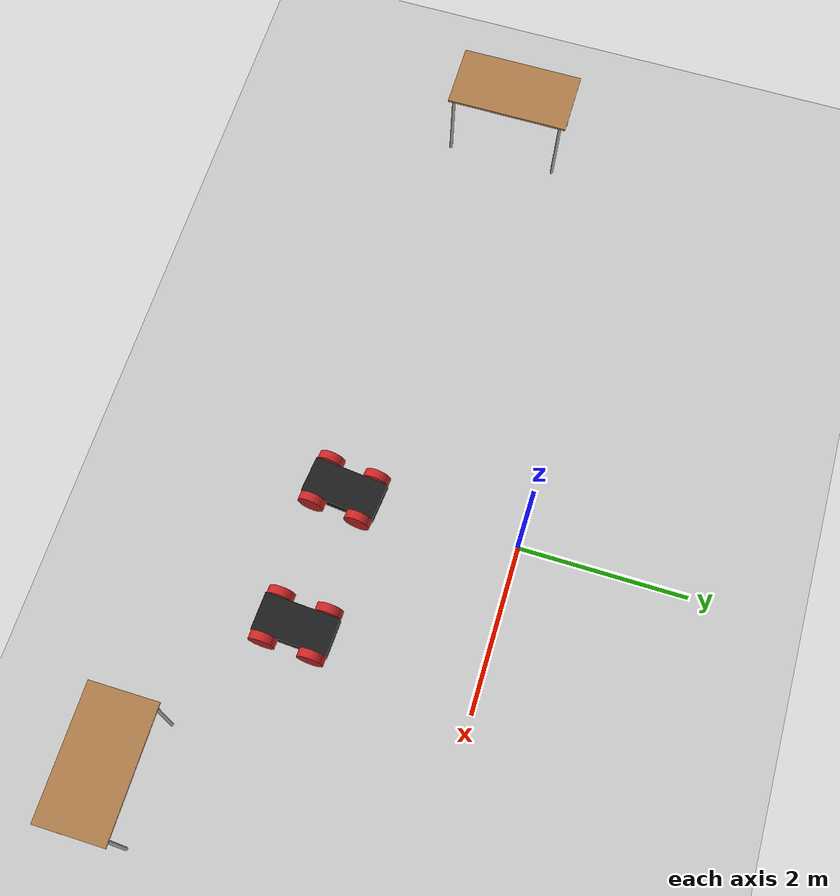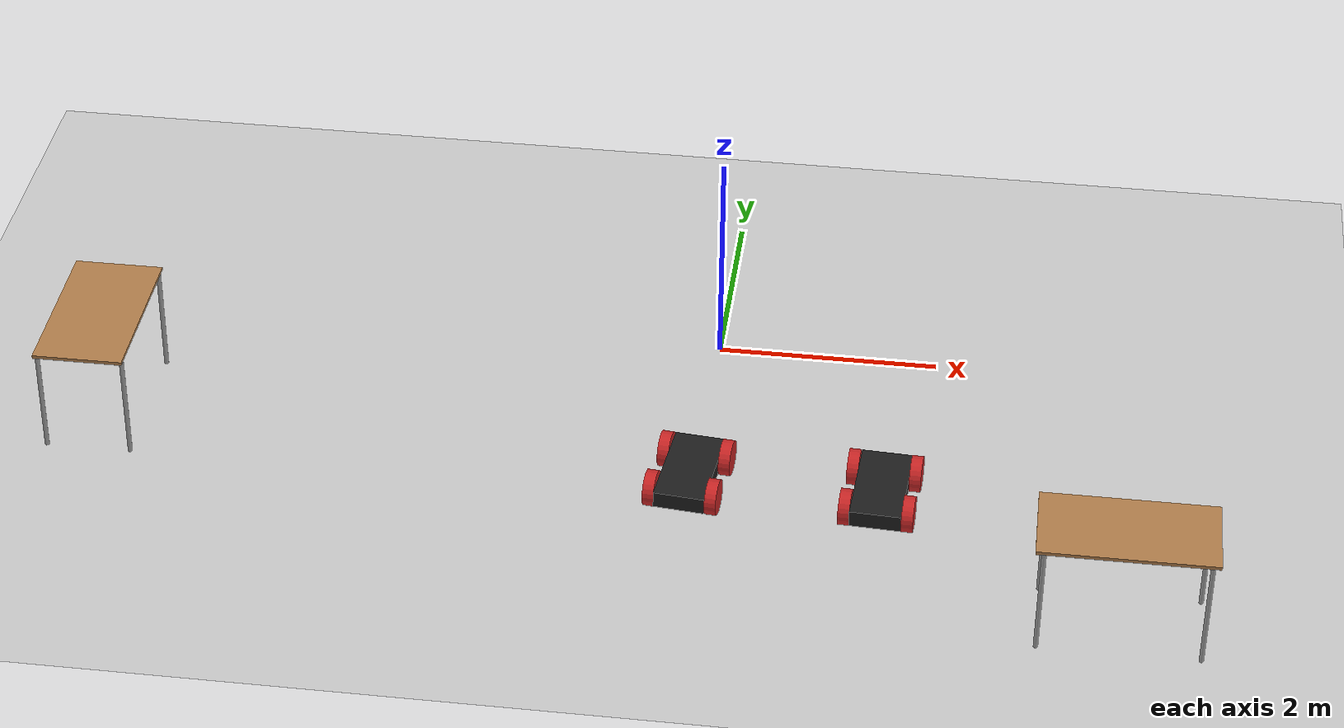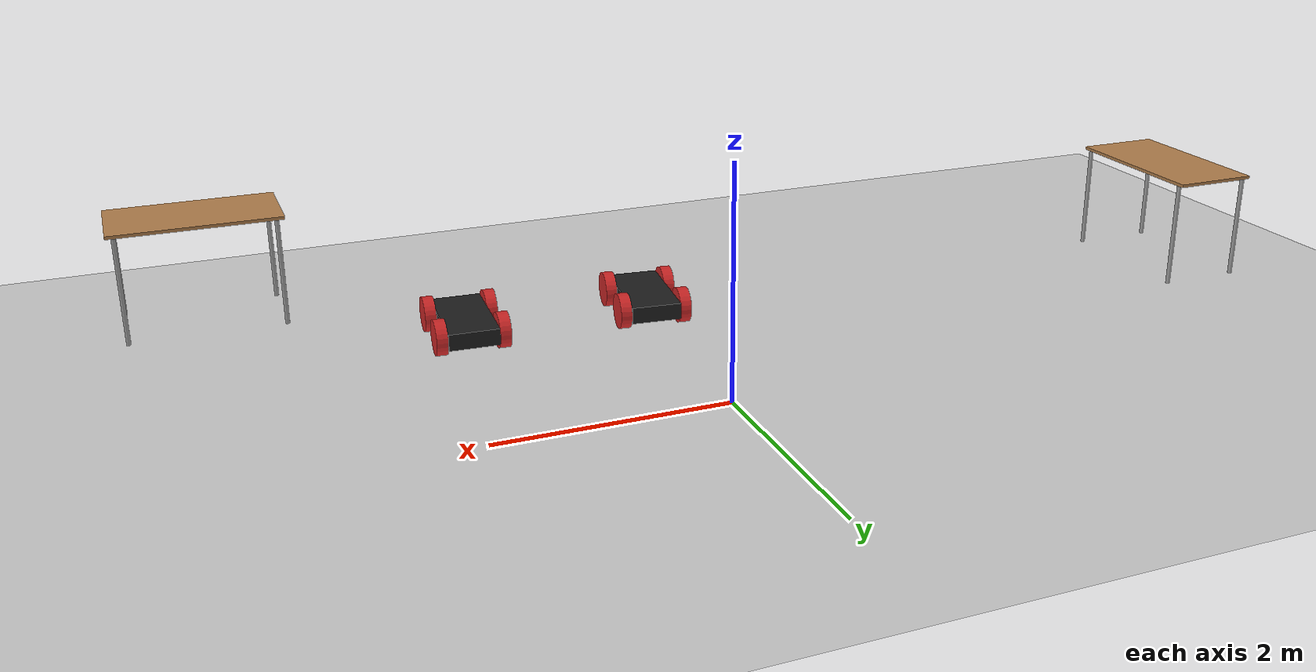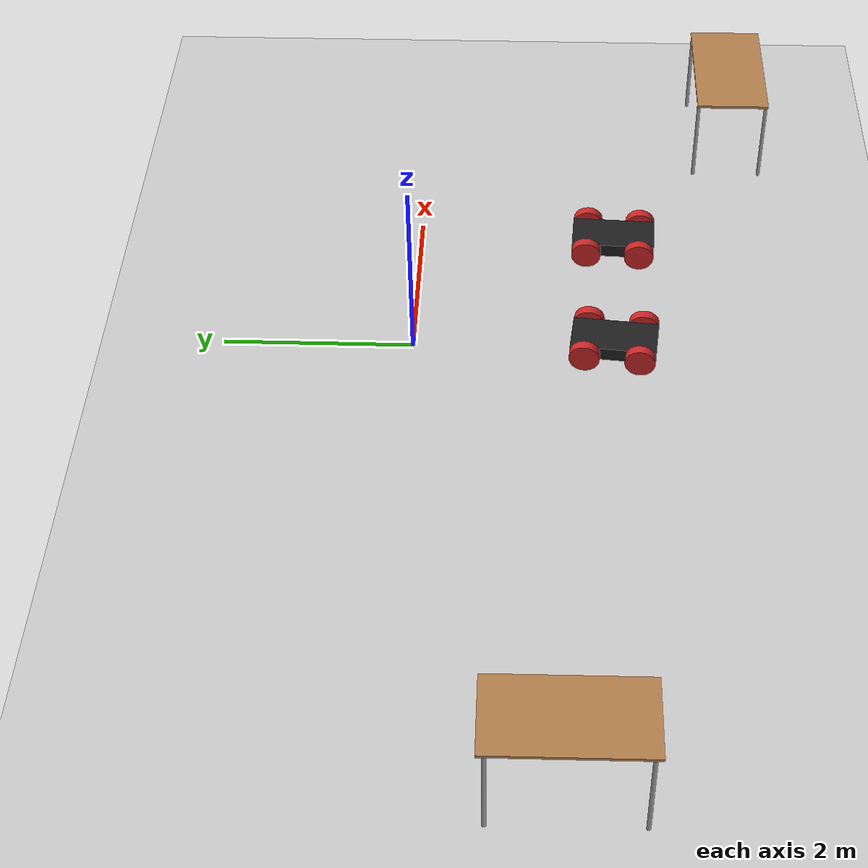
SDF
<sdf version="1.6">
 <world name="default">
  <model name="ground_plane">
   <static>1</static>
   <link name="link">
    <collision name="collision">
     <geometry><plane><normal>0 0 1</normal><size>100 100</size></plane></geometry>
     <surface>
      <contact><collide_bitmask>65535</collide_bitmask></contact>
      <friction><ode><mu>100</mu><mu2>50</mu2></ode></friction>
     </surface>
    </collision>
    <visual name="visual">
     <cast_shadows>0</cast_shadows>
     <geometry><plane><normal>0 0 1</normal><size>100 100</size></plane></geometry>
     <material>
      <script><uri>file://media/materials/scripts/gazebo.material</uri><name>Gazebo/Grey</name></script>
     </material>
    </visual>
   </link>
  </model>
  <model name="table">
   <static>1</static>
   <link name="link">
    <collision name="surface">
     <pose>0 0 1 0 -0 0</pose>
     <geometry><box><size>1.5 0.8 0.03</size></box></geometry>
     <surface><friction><ode><mu>0.6</mu><mu2>0.6</mu2></ode></friction></surface>
    </collision>
    <visual name="visual1">
     <pose>0 0 1 0 -0 0</pose>
     <geometry><box><size>1.5 0.8 0.03</size></box></geometry>
     <material>
      <script><uri>file://media/materials/scripts/gazebo.material</uri><name>Gazebo/Wood</name></script>
     </material>
    </visual>
    <collision name="front_left_leg">
     <pose>0.68 0.38 0.5 0 -0 0</pose>
     <geometry><cylinder><radius>0.02</radius><length>1</length></cylinder></geometry>
    </collision>
    <visual name="front_left_leg">
     <pose>0.68 0.38 0.5 0 -0 0</pose>
     <geometry><cylinder><radius>0.02</radius><length>1</length></cylinder></geometry>
     <material>
      <script><uri>file://media/materials/scripts/gazebo.material</uri><name>Gazebo/Grey</name></script>
     </material>
    </visual>
    <collision name="front_right_leg">
     <pose>0.68 -0.38 0.5 0 -0 0</pose>
     <geometry><cylinder><radius>0.02</radius><length>1</length></cylinder></geometry>
    </collision>
    <visual name="front_right_leg">
     <pose>0.68 -0.38 0.5 0 -0 0</pose>
     <geometry><cylinder><radius>0.02</radius><length>1</length></cylinder></geometry>
     <material>
      <script><uri>file://media/materials/scripts/gazebo.material</uri><name>Gazebo/Grey</name></script>
     </material>
    </visual>
    <collision name="back_right_leg">
     <pose>-0.68 -0.38 0.5 0 -0 0</pose>
     <geometry><cylinder><radius>0.02</radius><length>1</length></cylinder></geometry>
    </collision>
    <visual name="back_right_leg">
     <pose>-0.68 -0.38 0.5 0 -0 0</pose>
     <geometry><cylinder><radius>0.02</radius><length>1</length></cylinder></geometry>
     <material>
      <script><uri>file://media/materials/scripts/gazebo.material</uri><name>Gazebo/Grey</name></script>
     </material>
    </visual>
    <collision name="back_left_leg">
     <pose>-0.68 0.38 0.5 0 -0 0</pose>
     <geometry><cylinder><radius>0.02</radius><length>1</length></cylinder></geometry>
    </collision>
    <visual name="back_left_leg">
     <pose>-0.68 0.38 0.5 0 -0 0</pose>
     <geometry><cylinder><radius>0.02</radius><length>1</length></cylinder></geometry>
     <material>
      <script><uri>file://media/materials/scripts/gazebo.material</uri><name>Gazebo/Grey</name></script>
     </material>
    </visual>
   </link>
   <pose>3.73345 -3.48535 0 0 -0 0</pose>
  </model>
  <model name="table_1">
   <static>1</static>
   <link name="link">
    <collision name="surface">
     <pose>0 0 1 0 -0 0</pose>
     <geometry><box><size>1.5 0.8 0.03</size></box></geometry>
     <surface><friction><ode><mu>0.6</mu><mu2>0.6</mu2></ode></friction></surface>
    </collision>
    <visual name="visual1">
     <pose>0 0 1 0 -0 0</pose>
     <geometry><box><size>1.5 0.8 0.03</size></box></geometry>
     <material>
      <script><uri>file://media/materials/scripts/gazebo.material</uri><name>Gazebo/Wood</name></script>
     </material>
    </visual>
    <collision name="front_left_leg">
     <pose>0.68 0.38 0.5 0 -0 0</pose>
     <geometry><cylinder><radius>0.02</radius><length>1</length></cylinder></geometry>
    </collision>
    <visual name="front_left_leg">
     <pose>0.68 0.38 0.5 0 -0 0</pose>
     <geometry><cylinder><radius>0.02</radius><length>1</length></cylinder></geometry>
     <material>
      <script><uri>file://media/materials/scripts/gazebo.material</uri><name>Gazebo/Grey</name></script>
     </material>
    </visual>
    <collision name="front_right_leg">
     <pose>0.68 -0.38 0.5 0 -0 0</pose>
     <geometry><cylinder><radius>0.02</radius><length>1</length></cylinder></geometry>
    </collision>
    <visual name="front_right_leg">
     <pose>0.68 -0.38 0.5 0 -0 0</pose>
     <geometry><cylinder><radius>0.02</radius><length>1</length></cylinder></geometry>
     <material>
      <script><uri>file://media/materials/scripts/gazebo.material</uri><name>Gazebo/Grey</name></script>
     </material>
    </visual>
    <collision name="back_right_leg">
     <pose>-0.68 -0.38 0.5 0 -0 0</pose>
     <geometry><cylinder><radius>0.02</radius><length>1</length></cylinder></geometry>
    </collision>
    <visual name="back_right_leg">
     <pose>-0.68 -0.38 0.5 0 -0 0</pose>
     <geometry><cylinder><radius>0.02</radius><length>1</length></cylinder></geometry>
     <material>
      <script><uri>file://media/materials/scripts/gazebo.material</uri><name>Gazebo/Grey</name></script>
     </material>
    </visual>
    <collision name="back_left_leg">
     <pose>-0.68 0.38 0.5 0 -0 0</pose>
     <geometry><cylinder><radius>0.02</radius><length>1</length></cylinder></geometry>
    </collision>
    <visual name="back_left_leg">
     <pose>-0.68 0.38 0.5 0 -0 0</pose>
     <geometry><cylinder><radius>0.02</radius><length>1</length></cylinder></geometry>
     <material>
      <script><uri>file://media/materials/scripts/gazebo.material</uri><name>Gazebo/Grey</name></script>
     </material>
    </visual>
   </link>
   <pose>-5.41591 -1.58634 0 0 0 -1.5695</pose>
  </model>
  <model name="VehicleRobot">
   <link name="link_0">
    <inertial>
     <mass>1</mass>
     <inertia>
      <ixx>0.166667</ixx>
      <ixy>0</ixy>
      <ixz>0</ixz>
      <iyy>0.166667</iyy>
      <iyz>0</iyz>
      <izz>0.166667</izz>
     </inertia>
    </inertial>
    <visual name="visual">
     <geometry><box><size>0.45 0.9 0.15</size></box></geometry>
     <material>
      <lighting>1</lighting>
      <script><uri>file://media/materials/scripts/gazebo.material</uri><name>Gazebo/Black</name></script>
     </material>
    </visual>
    <collision name="collision">
     <geometry><box><size>0.45 0.9 0.15</size></box></geometry>
     <surface>
      <friction>
       <ode><mu>1</mu><mu2>1</mu2><fdir1>0 0 0</fdir1><slip1>0</slip1><slip2>0</slip2></ode>
       <torsional>
        <coefficient>1</coefficient>
        <patch_radius>0</patch_radius>
        <surface_radius>0</surface_radius>
        <use_patch_radius>1</use_patch_radius>
        <ode><slip>0</slip></ode>
       </torsional>
      </friction>
      <bounce><restitution_coefficient>0</restitution_coefficient><threshold>1e+06</threshold></bounce>
      <contact>
       <collide_without_contact>0</collide_without_contact>
       <collide_without_contact_bitmask>1</collide_without_contact_bitmask>
       <collide_bitmask>1</collide_bitmask>
       <ode>
        <soft_cfm>0</soft_cfm>
        <soft_erp>0.2</soft_erp>
        <kp>1e+13</kp>
        <kd>1</kd>
        <max_vel>0.01</max_vel>
        <min_depth>0</min_depth>
       </ode>
       <bullet>
        <split_impulse>1</split_impulse>
        <split_impulse_penetration_threshold>-0.01</split_impulse_penetration_threshold>
        <soft_cfm>0</soft_cfm>
        <soft_erp>0.2</soft_erp>
        <kp>1e+13</kp>
        <kd>1</kd>
       </bullet>
      </contact>
     </surface>
    </collision>
   </link>
   <link name="link_1">
    <inertial>
     <mass>1</mass>
     <inertia><ixx>0.145833</ixx><ixy>0</ixy><ixz>0</ixz><iyy>0.145833</iyy><iyz>0</iyz><izz>0.125</izz></inertia>
    </inertial>
    <pose>0.275015 0.29 -0 0 1.5707 0</pose>
    <visual name="visual">
     <geometry><cylinder><radius>0.16</radius><length>0.1</length></cylinder></geometry>
     <material>
      <lighting>1</lighting>
      <script><uri>file://media/materials/scripts/gazebo.material</uri><name>Gazebo/Red</name></script>
     </material>
    </visual>
    <collision name="collision">
     <geometry><cylinder><radius>0.16</radius><length>0.1</length></cylinder></geometry>
     <surface>
      <friction>
       <ode><mu>1</mu><mu2>1</mu2><fdir1>0 0 0</fdir1><slip1>0</slip1><slip2>0</slip2></ode>
       <torsional>
        <coefficient>1</coefficient>
        <patch_radius>0</patch_radius>
        <surface_radius>0</surface_radius>
        <use_patch_radius>1</use_patch_radius>
        <ode><slip>0</slip></ode>
       </torsional>
      </friction>
      <bounce><restitution_coefficient>0</restitution_coefficient><threshold>1e+06</threshold></bounce>
      <contact>
       <collide_without_contact>0</collide_without_contact>
       <collide_without_contact_bitmask>1</collide_without_contact_bitmask>
       <collide_bitmask>1</collide_bitmask>
       <ode>
        <soft_cfm>0</soft_cfm>
        <soft_erp>0.2</soft_erp>
        <kp>1e+13</kp>
        <kd>1</kd>
        <max_vel>0.01</max_vel>
        <min_depth>0</min_depth>
       </ode>
       <bullet>
        <split_impulse>1</split_impulse>
        <split_impulse_penetration_threshold>-0.01</split_impulse_penetration_threshold>
        <soft_cfm>0</soft_cfm>
        <soft_erp>0.2</soft_erp>
        <kp>1e+13</kp>
        <kd>1</kd>
       </bullet>
      </contact>
     </surface>
    </collision>
   </link>
   <link name="link_1_clone">
    <inertial>
     <mass>1</mass>
     <inertia><ixx>0.145833</ixx><ixy>0</ixy><ixz>0</ixz><iyy>0.145833</iyy><iyz>0</iyz><izz>0.125</izz></inertia>
    </inertial>
    <pose>0.275015 -0.29 -0 0 1.5707 0</pose>
    <visual name="visual">
     <geometry><cylinder><radius>0.16</radius><length>0.1</length></cylinder></geometry>
     <material>
      <lighting>1</lighting>
      <script><uri>file://media/materials/scripts/gazebo.material</uri><name>Gazebo/Red</name></script>
     </material>
    </visual>
    <collision name="collision">
     <geometry><cylinder><radius>0.16</radius><length>0.1</length></cylinder></geometry>
     <surface>
      <friction>
       <ode><mu>1</mu><mu2>1</mu2><fdir1>0 0 0</fdir1><slip1>0</slip1><slip2>0</slip2></ode>
       <torsional>
        <coefficient>1</coefficient>
        <patch_radius>0</patch_radius>
        <surface_radius>0</surface_radius>
        <use_patch_radius>1</use_patch_radius>
        <ode><slip>0</slip></ode>
       </torsional>
      </friction>
      <bounce><restitution_coefficient>0</restitution_coefficient><threshold>1e+06</threshold></bounce>
      <contact>
       <collide_without_contact>0</collide_without_contact>
       <collide_without_contact_bitmask>1</collide_without_contact_bitmask>
       <collide_bitmask>1</collide_bitmask>
       <ode>
        <soft_cfm>0</soft_cfm>
        <soft_erp>0.2</soft_erp>
        <kp>1e+13</kp>
        <kd>1</kd>
        <max_vel>0.01</max_vel>
        <min_depth>0</min_depth>
       </ode>
       <bullet>
        <split_impulse>1</split_impulse>
        <split_impulse_penetration_threshold>-0.01</split_impulse_penetration_threshold>
        <soft_cfm>0</soft_cfm>
        <soft_erp>0.2</soft_erp>
        <kp>1e+13</kp>
        <kd>1</kd>
       </bullet>
      </contact>
     </surface>
    </collision>
   </link>
   <link name="link_1_clone_0">
    <inertial>
     <mass>1</mass>
     <inertia><ixx>0.145833</ixx><ixy>0</ixy><ixz>0</ixz><iyy>0.145833</iyy><iyz>0</iyz><izz>0.125</izz></inertia>
    </inertial>
    <pose>-0.275015 0.29 -0 0 1.5707 0</pose>
    <visual name="visual">
     <geometry><cylinder><radius>0.16</radius><length>0.1</length></cylinder></geometry>
     <material>
      <lighting>1</lighting>
      <script><uri>file://media/materials/scripts/gazebo.material</uri><name>Gazebo/Red</name></script>
     </material>
    </visual>
    <collision name="collision">
     <geometry><cylinder><radius>0.16</radius><length>0.1</length></cylinder></geometry>
     <surface>
      <friction>
       <ode><mu>1</mu><mu2>1</mu2><fdir1>0 0 0</fdir1><slip1>0</slip1><slip2>0</slip2></ode>
       <torsional>
        <coefficient>1</coefficient>
        <patch_radius>0</patch_radius>
        <surface_radius>0</surface_radius>
        <use_patch_radius>1</use_patch_radius>
        <ode><slip>0</slip></ode>
       </torsional>
      </friction>
      <bounce><restitution_coefficient>0</restitution_coefficient><threshold>1e+06</threshold></bounce>
      <contact>
       <collide_without_contact>0</collide_without_contact>
       <collide_without_contact_bitmask>1</collide_without_contact_bitmask>
       <collide_bitmask>1</collide_bitmask>
       <ode>
        <soft_cfm>0</soft_cfm>
        <soft_erp>0.2</soft_erp>
        <kp>1e+13</kp>
        <kd>1</kd>
        <max_vel>0.01</max_vel>
        <min_depth>0</min_depth>
       </ode>
       <bullet>
        <split_impulse>1</split_impulse>
        <split_impulse_penetration_threshold>-0.01</split_impulse_penetration_threshold>
        <soft_cfm>0</soft_cfm>
        <soft_erp>0.2</soft_erp>
        <kp>1e+13</kp>
        <kd>1</kd>
       </bullet>
      </contact>
     </surface>
    </collision>
   </link>
   <link name="link_1_clone_1">
    <inertial>
     <mass>1</mass>
     <inertia><ixx>0.145833</ixx><ixy>0</ixy><ixz>0</ixz><iyy>0.145833</iyy><iyz>0</iyz><izz>0.125</izz></inertia>
    </inertial>
    <pose>-0.275015 -0.29 -0 0 1.5707 0</pose>
    <visual name="visual">
     <geometry><cylinder><radius>0.16</radius><length>0.1</length></cylinder></geometry>
     <material>
      <lighting>1</lighting>
      <script><uri>file://media/materials/scripts/gazebo.material</uri><name>Gazebo/Red</name></script>
     </material>
    </visual>
    <collision name="collision">
     <geometry><cylinder><radius>0.16</radius><length>0.1</length></cylinder></geometry>
     <surface>
      <friction>
       <ode><mu>1</mu><mu2>1</mu2><fdir1>0 0 0</fdir1><slip1>0</slip1><slip2>0</slip2></ode>
       <torsional>
        <coefficient>1</coefficient>
        <patch_radius>0</patch_radius>
        <surface_radius>0</surface_radius>
        <use_patch_radius>1</use_patch_radius>
        <ode><slip>0</slip></ode>
       </torsional>
      </friction>
      <bounce><restitution_coefficient>0</restitution_coefficient><threshold>1e+06</threshold></bounce>
      <contact>
       <collide_without_contact>0</collide_without_contact>
       <collide_without_contact_bitmask>1</collide_without_contact_bitmask>
       <collide_bitmask>1</collide_bitmask>
       <ode>
        <soft_cfm>0</soft_cfm>
        <soft_erp>0.2</soft_erp>
        <kp>1e+13</kp>
        <kd>1</kd>
        <max_vel>0.01</max_vel>
        <min_depth>0</min_depth>
       </ode>
       <bullet>
        <split_impulse>1</split_impulse>
        <split_impulse_penetration_threshold>-0.01</split_impulse_penetration_threshold>
        <soft_cfm>0</soft_cfm>
        <soft_erp>0.2</soft_erp>
        <kp>1e+13</kp>
        <kd>1</kd>
       </bullet>
      </contact>
     </surface>
    </collision>
   </link>
   <joint name="link_0_JOINT_0" type="revolute">
    <parent>link_0</parent>
    <child>link_1</child>
    <axis>
     <xyz>0 0.01 1</xyz>
     <use_parent_model_frame>0</use_parent_model_frame>
     <limit>
      <lower>-1.79769e+308</lower>
      <upper>1.79769e+308</upper>
      <effort>-1</effort>
      <velocity>-1</velocity>
     </limit>
     <dynamics>
      <spring_reference>0</spring_reference>
      <spring_stiffness>0</spring_stiffness>
      <damping>0</damping>
     </dynamics>
    </axis>
    <physics>
     <ode><limit><cfm>0</cfm><erp>0.2</erp></limit><suspension><cfm>0</cfm><erp>0.2</erp></suspension></ode>
    </physics>
   </joint>
   <joint name="link_0_JOINT_1" type="revolute">
    <parent>link_0</parent>
    <child>link_1_clone</child>
    <axis>
     <xyz>0 0 1</xyz>
     <use_parent_model_frame>0</use_parent_model_frame>
     <limit>
      <lower>-1.79769e+308</lower>
      <upper>1.79769e+308</upper>
      <effort>-1</effort>
      <velocity>-1</velocity>
     </limit>
     <dynamics>
      <spring_reference>0</spring_reference>
      <spring_stiffness>0</spring_stiffness>
      <damping>0</damping>
     </dynamics>
    </axis>
    <physics>
     <ode><limit><cfm>0</cfm><erp>0.2</erp></limit><suspension><cfm>0</cfm><erp>0.2</erp></suspension></ode>
    </physics>
   </joint>
   <joint name="link_0_JOINT_2" type="revolute">
    <parent>link_0</parent>
    <child>link_1_clone_0</child>
    <axis>
     <xyz>0 0 1</xyz>
     <use_parent_model_frame>0</use_parent_model_frame>
     <limit>
      <lower>-1.79769e+308</lower>
      <upper>1.79769e+308</upper>
      <effort>-1</effort>
      <velocity>-1</velocity>
     </limit>
     <dynamics>
      <spring_reference>0</spring_reference>
      <spring_stiffness>0</spring_stiffness>
      <damping>0</damping>
     </dynamics>
    </axis>
    <physics>
     <ode><limit><cfm>0</cfm><erp>0.2</erp></limit><suspension><cfm>0</cfm><erp>0.2</erp></suspension></ode>
    </physics>
   </joint>
   <joint name="link_0_JOINT_3" type="revolute">
    <parent>link_0</parent>
    <child>link_1_clone_1</child>
    <axis>
     <xyz>0 0 1</xyz>
     <use_parent_model_frame>0</use_parent_model_frame>
     <limit>
      <lower>-1.79769e+308</lower>
      <upper>1.79769e+308</upper>
      <effort>-1</effort>
      <velocity>-1</velocity>
     </limit>
     <dynamics>
      <spring_reference>0</spring_reference>
      <spring_stiffness>0</spring_stiffness>
      <damping>0</damping>
     </dynamics>
    </axis>
    <physics>
     <ode><limit><cfm>0</cfm><erp>0.2</erp></limit><suspension><cfm>0</cfm><erp>0.2</erp></suspension></ode>
    </physics>
   </joint>
   <static>0</static>
   <pose>-0.03743 -2.11087 0.160001 -1.6e-05 -2e-06 -0.102581</pose>
  </model>
  <model name="VehicleRobot_clone">
   <link name="link_0">
    <inertial>
     <mass>1</mass>
     <inertia>
      <ixx>0.166667</ixx>
      <ixy>0</ixy>
      <ixz>0</ixz>
      <iyy>0.166667</iyy>
      <iyz>0</iyz>
      <izz>0.166667</izz>
     </inertia>
    </inertial>
    <visual name="visual">
     <geometry><box><size>0.45 0.9 0.15</size></box></geometry>
     <material>
      <lighting>1</lighting>
      <script><uri>file://media/materials/scripts/gazebo.material</uri><name>Gazebo/Black</name></script>
     </material>
    </visual>
    <collision name="collision">
     <geometry><box><size>0.45 0.9 0.15</size></box></geometry>
     <surface>
      <friction>
       <ode><mu>1</mu><mu2>1</mu2><fdir1>0 0 0</fdir1><slip1>0</slip1><slip2>0</slip2></ode>
       <torsional>
        <coefficient>1</coefficient>
        <patch_radius>0</patch_radius>
        <surface_radius>0</surface_radius>
        <use_patch_radius>1</use_patch_radius>
        <ode><slip>0</slip></ode>
       </torsional>
      </friction>
      <bounce><restitution_coefficient>0</restitution_coefficient><threshold>1e+06</threshold></bounce>
      <contact>
       <collide_without_contact>0</collide_without_contact>
       <collide_without_contact_bitmask>1</collide_without_contact_bitmask>
       <collide_bitmask>1</collide_bitmask>
       <ode>
        <soft_cfm>0</soft_cfm>
        <soft_erp>0.2</soft_erp>
        <kp>1e+13</kp>
        <kd>1</kd>
        <max_vel>0.01</max_vel>
        <min_depth>0</min_depth>
       </ode>
       <bullet>
        <split_impulse>1</split_impulse>
        <split_impulse_penetration_threshold>-0.01</split_impulse_penetration_threshold>
        <soft_cfm>0</soft_cfm>
        <soft_erp>0.2</soft_erp>
        <kp>1e+13</kp>
        <kd>1</kd>
       </bullet>
      </contact>
     </surface>
    </collision>
   </link>
   <link name="link_1">
    <inertial>
     <mass>1</mass>
     <inertia><ixx>0.145833</ixx><ixy>0</ixy><ixz>0</ixz><iyy>0.145833</iyy><iyz>0</iyz><izz>0.125</izz></inertia>
    </inertial>
    <pose>0.275015 0.29 -0 0 1.5707 0</pose>
    <visual name="visual">
     <geometry><cylinder><radius>0.16</radius><length>0.1</length></cylinder></geometry>
     <material>
      <lighting>1</lighting>
      <script><uri>file://media/materials/scripts/gazebo.material</uri><name>Gazebo/Red</name></script>
     </material>
    </visual>
    <collision name="collision">
     <geometry><cylinder><radius>0.16</radius><length>0.1</length></cylinder></geometry>
     <surface>
      <friction>
       <ode><mu>1</mu><mu2>1</mu2><fdir1>0 0 0</fdir1><slip1>0</slip1><slip2>0</slip2></ode>
       <torsional>
        <coefficient>1</coefficient>
        <patch_radius>0</patch_radius>
        <surface_radius>0</surface_radius>
        <use_patch_radius>1</use_patch_radius>
        <ode><slip>0</slip></ode>
       </torsional>
      </friction>
      <bounce><restitution_coefficient>0</restitution_coefficient><threshold>1e+06</threshold></bounce>
      <contact>
       <collide_without_contact>0</collide_without_contact>
       <collide_without_contact_bitmask>1</collide_without_contact_bitmask>
       <collide_bitmask>1</collide_bitmask>
       <ode>
        <soft_cfm>0</soft_cfm>
        <soft_erp>0.2</soft_erp>
        <kp>1e+13</kp>
        <kd>1</kd>
        <max_vel>0.01</max_vel>
        <min_depth>0</min_depth>
       </ode>
       <bullet>
        <split_impulse>1</split_impulse>
        <split_impulse_penetration_threshold>-0.01</split_impulse_penetration_threshold>
        <soft_cfm>0</soft_cfm>
        <soft_erp>0.2</soft_erp>
        <kp>1e+13</kp>
        <kd>1</kd>
       </bullet>
      </contact>
     </surface>
    </collision>
   </link>
   <link name="link_1_clone">
    <inertial>
     <mass>1</mass>
     <inertia><ixx>0.145833</ixx><ixy>0</ixy><ixz>0</ixz><iyy>0.145833</iyy><iyz>0</iyz><izz>0.125</izz></inertia>
    </inertial>
    <pose>0.275015 -0.29 -0 0 1.5707 0</pose>
    <visual name="visual">
     <geometry><cylinder><radius>0.16</radius><length>0.1</length></cylinder></geometry>
     <material>
      <lighting>1</lighting>
      <script><uri>file://media/materials/scripts/gazebo.material</uri><name>Gazebo/Red</name></script>
     </material>
    </visual>
    <collision name="collision">
     <geometry><cylinder><radius>0.16</radius><length>0.1</length></cylinder></geometry>
     <surface>
      <friction>
       <ode><mu>1</mu><mu2>1</mu2><fdir1>0 0 0</fdir1><slip1>0</slip1><slip2>0</slip2></ode>
       <torsional>
        <coefficient>1</coefficient>
        <patch_radius>0</patch_radius>
        <surface_radius>0</surface_radius>
        <use_patch_radius>1</use_patch_radius>
        <ode><slip>0</slip></ode>
       </torsional>
      </friction>
      <bounce><restitution_coefficient>0</restitution_coefficient><threshold>1e+06</threshold></bounce>
      <contact>
       <collide_without_contact>0</collide_without_contact>
       <collide_without_contact_bitmask>1</collide_without_contact_bitmask>
       <collide_bitmask>1</collide_bitmask>
       <ode>
        <soft_cfm>0</soft_cfm>
        <soft_erp>0.2</soft_erp>
        <kp>1e+13</kp>
        <kd>1</kd>
        <max_vel>0.01</max_vel>
        <min_depth>0</min_depth>
       </ode>
       <bullet>
        <split_impulse>1</split_impulse>
        <split_impulse_penetration_threshold>-0.01</split_impulse_penetration_threshold>
        <soft_cfm>0</soft_cfm>
        <soft_erp>0.2</soft_erp>
        <kp>1e+13</kp>
        <kd>1</kd>
       </bullet>
      </contact>
     </surface>
    </collision>
   </link>
   <link name="link_1_clone_0">
    <inertial>
     <mass>1</mass>
     <inertia><ixx>0.145833</ixx><ixy>0</ixy><ixz>0</ixz><iyy>0.145833</iyy><iyz>0</iyz><izz>0.125</izz></inertia>
    </inertial>
    <pose>-0.275015 0.29 -0 0 1.5707 0</pose>
    <visual name="visual">
     <geometry><cylinder><radius>0.16</radius><length>0.1</length></cylinder></geometry>
     <material>
      <lighting>1</lighting>
      <script><uri>file://media/materials/scripts/gazebo.material</uri><name>Gazebo/Red</name></script>
     </material>
    </visual>
    <collision name="collision">
     <geometry><cylinder><radius>0.16</radius><length>0.1</length></cylinder></geometry>
     <surface>
      <friction>
       <ode><mu>1</mu><mu2>1</mu2><fdir1>0 0 0</fdir1><slip1>0</slip1><slip2>0</slip2></ode>
       <torsional>
        <coefficient>1</coefficient>
        <patch_radius>0</patch_radius>
        <surface_radius>0</surface_radius>
        <use_patch_radius>1</use_patch_radius>
        <ode><slip>0</slip></ode>
       </torsional>
      </friction>
      <bounce><restitution_coefficient>0</restitution_coefficient><threshold>1e+06</threshold></bounce>
      <contact>
       <collide_without_contact>0</collide_without_contact>
       <collide_without_contact_bitmask>1</collide_without_contact_bitmask>
       <collide_bitmask>1</collide_bitmask>
       <ode>
        <soft_cfm>0</soft_cfm>
        <soft_erp>0.2</soft_erp>
        <kp>1e+13</kp>
        <kd>1</kd>
        <max_vel>0.01</max_vel>
        <min_depth>0</min_depth>
       </ode>
       <bullet>
        <split_impulse>1</split_impulse>
        <split_impulse_penetration_threshold>-0.01</split_impulse_penetration_threshold>
        <soft_cfm>0</soft_cfm>
        <soft_erp>0.2</soft_erp>
        <kp>1e+13</kp>
        <kd>1</kd>
       </bullet>
      </contact>
     </surface>
    </collision>
   </link>
   <link name="link_1_clone_1">
    <inertial>
     <mass>1</mass>
     <inertia><ixx>0.145833</ixx><ixy>0</ixy><ixz>0</ixz><iyy>0.145833</iyy><iyz>0</iyz><izz>0.125</izz></inertia>
    </inertial>
    <pose>-0.275015 -0.29 -0 0 1.5707 0</pose>
    <visual name="visual">
     <geometry><cylinder><radius>0.16</radius><length>0.1</length></cylinder></geometry>
     <material>
      <lighting>1</lighting>
      <script><uri>file://media/materials/scripts/gazebo.material</uri><name>Gazebo/Red</name></script>
     </material>
    </visual>
    <collision name="collision">
     <geometry><cylinder><radius>0.16</radius><length>0.1</length></cylinder></geometry>
     <surface>
      <friction>
       <ode><mu>1</mu><mu2>1</mu2><fdir1>0 0 0</fdir1><slip1>0</slip1><slip2>0</slip2></ode>
       <torsional>
        <coefficient>1</coefficient>
        <patch_radius>0</patch_radius>
        <surface_radius>0</surface_radius>
        <use_patch_radius>1</use_patch_radius>
        <ode><slip>0</slip></ode>
       </torsional>
      </friction>
      <bounce><restitution_coefficient>0</restitution_coefficient><threshold>1e+06</threshold></bounce>
      <contact>
       <collide_without_contact>0</collide_without_contact>
       <collide_without_contact_bitmask>1</collide_without_contact_bitmask>
       <collide_bitmask>1</collide_bitmask>
       <ode>
        <soft_cfm>0</soft_cfm>
        <soft_erp>0.2</soft_erp>
        <kp>1e+13</kp>
        <kd>1</kd>
        <max_vel>0.01</max_vel>
        <min_depth>0</min_depth>
       </ode>
       <bullet>
        <split_impulse>1</split_impulse>
        <split_impulse_penetration_threshold>-0.01</split_impulse_penetration_threshold>
        <soft_cfm>0</soft_cfm>
        <soft_erp>0.2</soft_erp>
        <kp>1e+13</kp>
        <kd>1</kd>
       </bullet>
      </contact>
     </surface>
    </collision>
   </link>
   <joint name="link_0_JOINT_0" type="revolute">
    <parent>link_0</parent>
    <child>link_1</child>
    <axis>
     <xyz>0 0.01 1</xyz>
     <use_parent_model_frame>0</use_parent_model_frame>
     <limit>
      <lower>-1.79769e+308</lower>
      <upper>1.79769e+308</upper>
      <effort>-1</effort>
      <velocity>-1</velocity>
     </limit>
     <dynamics>
      <spring_reference>0</spring_reference>
      <spring_stiffness>0</spring_stiffness>
      <damping>0</damping>
     </dynamics>
    </axis>
    <physics>
     <ode><limit><cfm>0</cfm><erp>0.2</erp></limit><suspension><cfm>0</cfm><erp>0.2</erp></suspension></ode>
    </physics>
   </joint>
   <joint name="link_0_JOINT_1" type="revolute">
    <parent>link_0</parent>
    <child>link_1_clone</child>
    <axis>
     <xyz>0 0 1</xyz>
     <use_parent_model_frame>0</use_parent_model_frame>
     <limit>
      <lower>-1.79769e+308</lower>
      <upper>1.79769e+308</upper>
      <effort>-1</effort>
      <velocity>-1</velocity>
     </limit>
     <dynamics>
      <spring_reference>0</spring_reference>
      <spring_stiffness>0</spring_stiffness>
      <damping>0</damping>
     </dynamics>
    </axis>
    <physics>
     <ode><limit><cfm>0</cfm><erp>0.2</erp></limit><suspension><cfm>0</cfm><erp>0.2</erp></suspension></ode>
    </physics>
   </joint>
   <joint name="link_0_JOINT_2" type="revolute">
    <parent>link_0</parent>
    <child>link_1_clone_0</child>
    <axis>
     <xyz>0 0 1</xyz>
     <use_parent_model_frame>0</use_parent_model_frame>
     <limit>
      <lower>-1.79769e+308</lower>
      <upper>1.79769e+308</upper>
      <effort>-1</effort>
      <velocity>-1</velocity>
     </limit>
     <dynamics>
      <spring_reference>0</spring_reference>
      <spring_stiffness>0</spring_stiffness>
      <damping>0</damping>
     </dynamics>
    </axis>
    <physics>
     <ode><limit><cfm>0</cfm><erp>0.2</erp></limit><suspension><cfm>0</cfm><erp>0.2</erp></suspension></ode>
    </physics>
   </joint>
   <joint name="link_0_JOINT_3" type="revolute">
    <parent>link_0</parent>
    <child>link_1_clone_1</child>
    <axis>
     <xyz>0 0 1</xyz>
     <use_parent_model_frame>0</use_parent_model_frame>
     <limit>
      <lower>-1.79769e+308</lower>
      <upper>1.79769e+308</upper>
      <effort>-1</effort>
      <velocity>-1</velocity>
     </limit>
     <dynamics>
      <spring_reference>0</spring_reference>
      <spring_stiffness>0</spring_stiffness>
      <damping>0</damping>
     </dynamics>
    </axis>
    <physics>
     <ode><limit><cfm>0</cfm><erp>0.2</erp></limit><suspension><cfm>0</cfm><erp>0.2</erp></suspension></ode>
    </physics>
   </joint>
   <static>0</static>
   <pose>1.64399 -2.13432 0.160005 0 0 -0.052358</pose>
  </model>
 </world>
</sdf>
